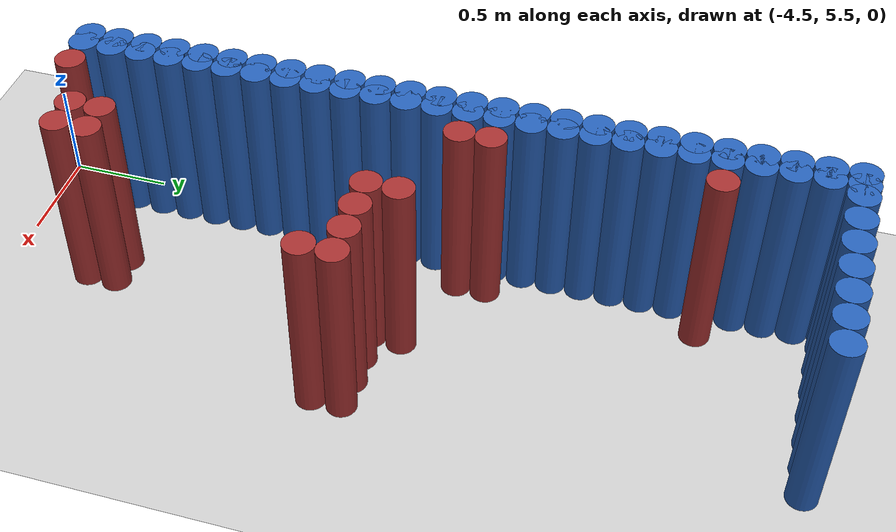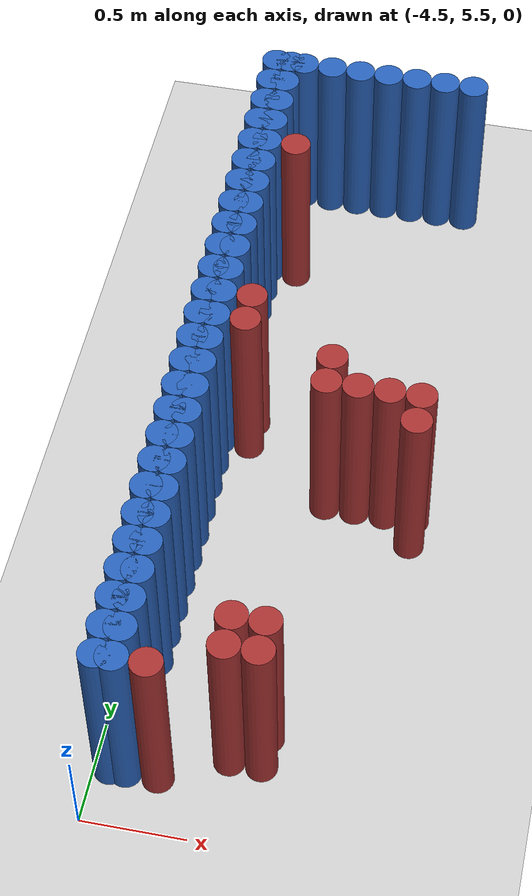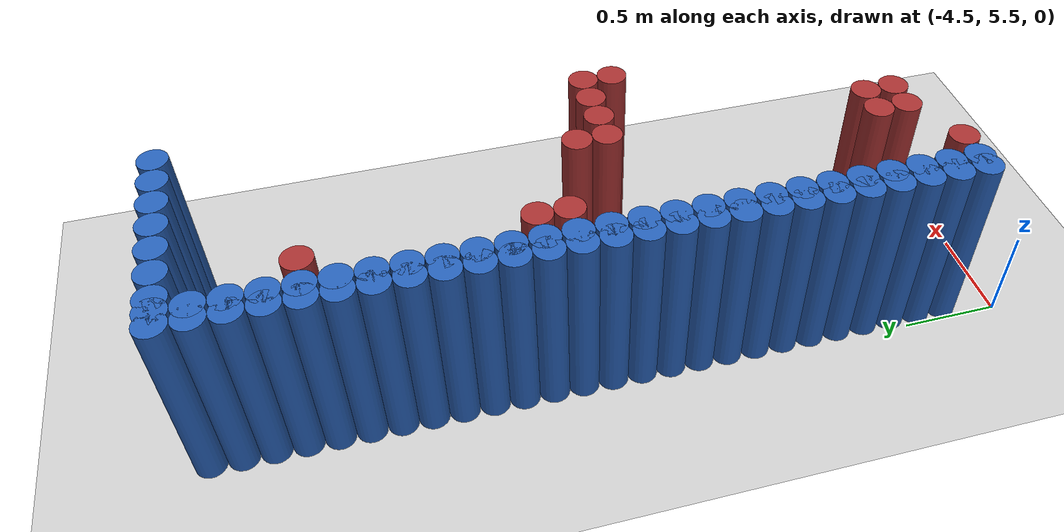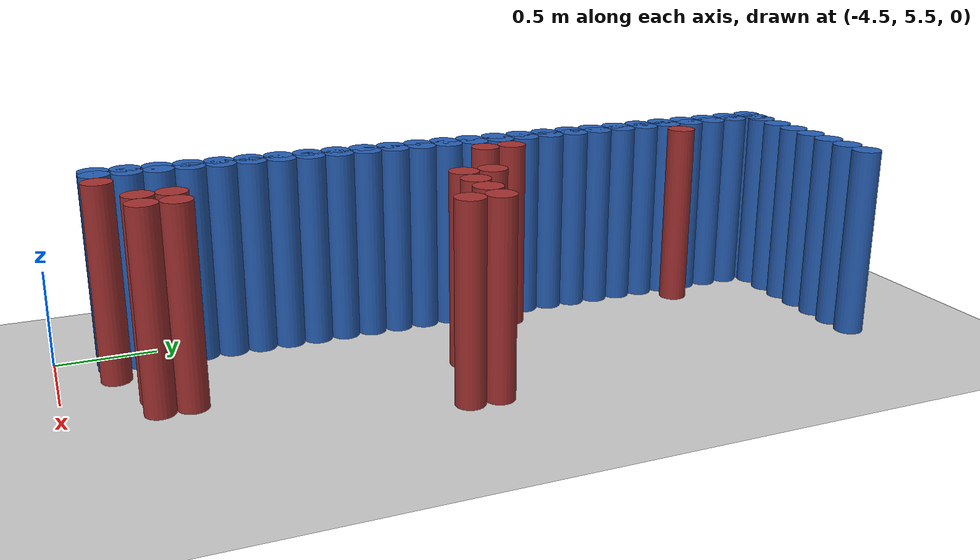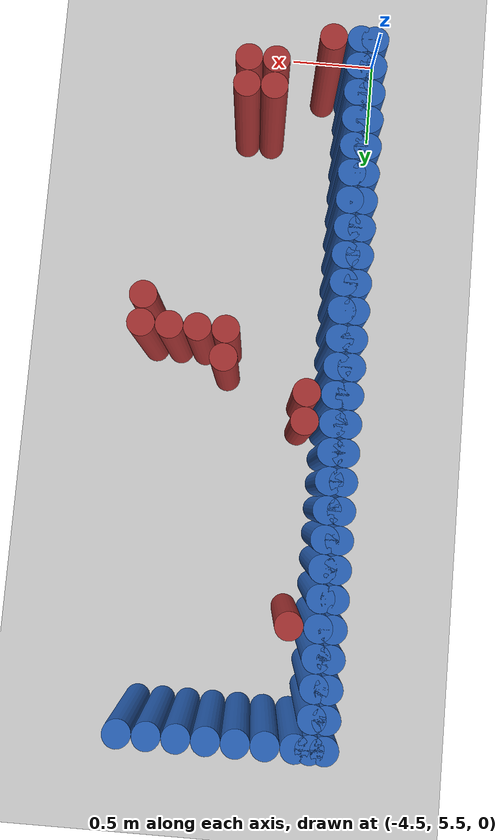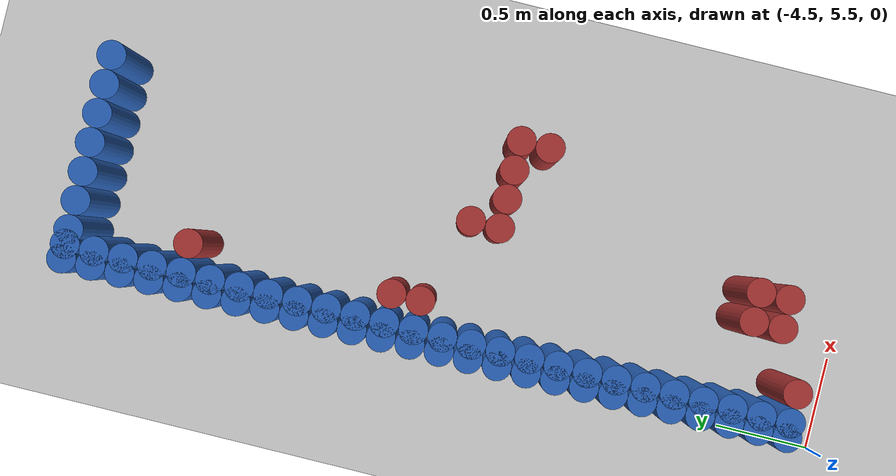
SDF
<sdf version="1.6">
 <world name="barn_world">
  <model name="ground_plane">
   <static>1</static>
   <link name="link">
    <collision name="collision">
     <geometry><plane><normal>0 0 1</normal><size>100 100</size></plane></geometry>
    </collision>
    <visual name="visual">
     <geometry><plane><normal>0 0 1</normal><size>100 100</size></plane></geometry>
     <material>
      <script><uri>file://media/materials/scripts/gazebo.material</uri><name>Gazebo/Grey</name></script>
     </material>
    </visual>
   </link>
  </model>
  <model name="unit_cylinder_130">
   <static>1</static>
   <pose>-4.3500 5.7750 0.5 0 0 0</pose>
   <link name="link">
    <collision name="collision">
     <geometry><cylinder><radius>0.075</radius><length>1</length></cylinder></geometry>
    </collision>
    <visual name="visual">
     <geometry><cylinder><radius>0.075</radius><length>1</length></cylinder></geometry>
     <material><ambient>0.152 0.379 0.72 1</ambient><diffuse>0.152 0.379 0.72 1</diffuse></material>
    </visual>
   </link>
  </model>
  <model name="unit_cylinder_131">
   <static>1</static>
   <pose>-4.3500 5.9250 0.5 0 0 0</pose>
   <link name="link">
    <collision name="collision">
     <geometry><cylinder><radius>0.075</radius><length>1</length></cylinder></geometry>
    </collision>
    <visual name="visual">
     <geometry><cylinder><radius>0.075</radius><length>1</length></cylinder></geometry>
     <material><ambient>0.152 0.379 0.72 1</ambient><diffuse>0.152 0.379 0.72 1</diffuse></material>
    </visual>
   </link>
  </model>
  <model name="unit_cylinder_132">
   <static>1</static>
   <pose>-4.3500 6.0750 0.5 0 0 0</pose>
   <link name="link">
    <collision name="collision">
     <geometry><cylinder><radius>0.075</radius><length>1</length></cylinder></geometry>
    </collision>
    <visual name="visual">
     <geometry><cylinder><radius>0.075</radius><length>1</length></cylinder></geometry>
     <material><ambient>0.152 0.379 0.72 1</ambient><diffuse>0.152 0.379 0.72 1</diffuse></material>
    </visual>
   </link>
  </model>
  <model name="unit_cylinder_133">
   <static>1</static>
   <pose>-4.3500 6.2250 0.5 0 0 0</pose>
   <link name="link">
    <collision name="collision">
     <geometry><cylinder><radius>0.075</radius><length>1</length></cylinder></geometry>
    </collision>
    <visual name="visual">
     <geometry><cylinder><radius>0.075</radius><length>1</length></cylinder></geometry>
     <material><ambient>0.152 0.379 0.72 1</ambient><diffuse>0.152 0.379 0.72 1</diffuse></material>
    </visual>
   </link>
  </model>
  <model name="unit_cylinder_134">
   <static>1</static>
   <pose>-4.3500 6.3750 0.5 0 0 0</pose>
   <link name="link">
    <collision name="collision">
     <geometry><cylinder><radius>0.075</radius><length>1</length></cylinder></geometry>
    </collision>
    <visual name="visual">
     <geometry><cylinder><radius>0.075</radius><length>1</length></cylinder></geometry>
     <material><ambient>0.152 0.379 0.72 1</ambient><diffuse>0.152 0.379 0.72 1</diffuse></material>
    </visual>
   </link>
  </model>
  <model name="unit_cylinder_135">
   <static>1</static>
   <pose>-4.3500 6.5250 0.5 0 0 0</pose>
   <link name="link">
    <collision name="collision">
     <geometry><cylinder><radius>0.075</radius><length>1</length></cylinder></geometry>
    </collision>
    <visual name="visual">
     <geometry><cylinder><radius>0.075</radius><length>1</length></cylinder></geometry>
     <material><ambient>0.152 0.379 0.72 1</ambient><diffuse>0.152 0.379 0.72 1</diffuse></material>
    </visual>
   </link>
  </model>
  <model name="unit_cylinder_136">
   <static>1</static>
   <pose>-4.3500 6.6750 0.5 0 0 0</pose>
   <link name="link">
    <collision name="collision">
     <geometry><cylinder><radius>0.075</radius><length>1</length></cylinder></geometry>
    </collision>
    <visual name="visual">
     <geometry><cylinder><radius>0.075</radius><length>1</length></cylinder></geometry>
     <material><ambient>0.152 0.379 0.72 1</ambient><diffuse>0.152 0.379 0.72 1</diffuse></material>
    </visual>
   </link>
  </model>
  <model name="unit_cylinder_137">
   <static>1</static>
   <pose>-4.3500 6.8250 0.5 0 0 0</pose>
   <link name="link">
    <collision name="collision">
     <geometry><cylinder><radius>0.075</radius><length>1</length></cylinder></geometry>
    </collision>
    <visual name="visual">
     <geometry><cylinder><radius>0.075</radius><length>1</length></cylinder></geometry>
     <material><ambient>0.152 0.379 0.72 1</ambient><diffuse>0.152 0.379 0.72 1</diffuse></material>
    </visual>
   </link>
  </model>
  <model name="unit_cylinder_138">
   <static>1</static>
   <pose>-4.3500 6.9750 0.5 0 0 0</pose>
   <link name="link">
    <collision name="collision">
     <geometry><cylinder><radius>0.075</radius><length>1</length></cylinder></geometry>
    </collision>
    <visual name="visual">
     <geometry><cylinder><radius>0.075</radius><length>1</length></cylinder></geometry>
     <material><ambient>0.152 0.379 0.72 1</ambient><diffuse>0.152 0.379 0.72 1</diffuse></material>
    </visual>
   </link>
  </model>
  <model name="unit_cylinder_139">
   <static>1</static>
   <pose>-4.3500 7.1250 0.5 0 0 0</pose>
   <link name="link">
    <collision name="collision">
     <geometry><cylinder><radius>0.075</radius><length>1</length></cylinder></geometry>
    </collision>
    <visual name="visual">
     <geometry><cylinder><radius>0.075</radius><length>1</length></cylinder></geometry>
     <material><ambient>0.152 0.379 0.72 1</ambient><diffuse>0.152 0.379 0.72 1</diffuse></material>
    </visual>
   </link>
  </model>
  <model name="unit_cylinder_140">
   <static>1</static>
   <pose>-4.3500 7.2750 0.5 0 0 0</pose>
   <link name="link">
    <collision name="collision">
     <geometry><cylinder><radius>0.075</radius><length>1</length></cylinder></geometry>
    </collision>
    <visual name="visual">
     <geometry><cylinder><radius>0.075</radius><length>1</length></cylinder></geometry>
     <material><ambient>0.152 0.379 0.72 1</ambient><diffuse>0.152 0.379 0.72 1</diffuse></material>
    </visual>
   </link>
  </model>
  <model name="unit_cylinder_141">
   <static>1</static>
   <pose>-4.3500 7.4250 0.5 0 0 0</pose>
   <link name="link">
    <collision name="collision">
     <geometry><cylinder><radius>0.075</radius><length>1</length></cylinder></geometry>
    </collision>
    <visual name="visual">
     <geometry><cylinder><radius>0.075</radius><length>1</length></cylinder></geometry>
     <material><ambient>0.152 0.379 0.72 1</ambient><diffuse>0.152 0.379 0.72 1</diffuse></material>
    </visual>
   </link>
  </model>
  <model name="unit_cylinder_142">
   <static>1</static>
   <pose>-4.3500 7.5750 0.5 0 0 0</pose>
   <link name="link">
    <collision name="collision">
     <geometry><cylinder><radius>0.075</radius><length>1</length></cylinder></geometry>
    </collision>
    <visual name="visual">
     <geometry><cylinder><radius>0.075</radius><length>1</length></cylinder></geometry>
     <material><ambient>0.152 0.379 0.72 1</ambient><diffuse>0.152 0.379 0.72 1</diffuse></material>
    </visual>
   </link>
  </model>
  <model name="unit_cylinder_143">
   <static>1</static>
   <pose>-4.3500 7.7250 0.5 0 0 0</pose>
   <link name="link">
    <collision name="collision">
     <geometry><cylinder><radius>0.075</radius><length>1</length></cylinder></geometry>
    </collision>
    <visual name="visual">
     <geometry><cylinder><radius>0.075</radius><length>1</length></cylinder></geometry>
     <material><ambient>0.152 0.379 0.72 1</ambient><diffuse>0.152 0.379 0.72 1</diffuse></material>
    </visual>
   </link>
  </model>
  <model name="unit_cylinder_144">
   <static>1</static>
   <pose>-4.3500 7.8750 0.5 0 0 0</pose>
   <link name="link">
    <collision name="collision">
     <geometry><cylinder><radius>0.075</radius><length>1</length></cylinder></geometry>
    </collision>
    <visual name="visual">
     <geometry><cylinder><radius>0.075</radius><length>1</length></cylinder></geometry>
     <material><ambient>0.152 0.379 0.72 1</ambient><diffuse>0.152 0.379 0.72 1</diffuse></material>
    </visual>
   </link>
  </model>
  <model name="unit_cylinder_145">
   <static>1</static>
   <pose>-4.3500 8.0250 0.5 0 0 0</pose>
   <link name="link">
    <collision name="collision">
     <geometry><cylinder><radius>0.075</radius><length>1</length></cylinder></geometry>
    </collision>
    <visual name="visual">
     <geometry><cylinder><radius>0.075</radius><length>1</length></cylinder></geometry>
     <material><ambient>0.152 0.379 0.72 1</ambient><diffuse>0.152 0.379 0.72 1</diffuse></material>
    </visual>
   </link>
  </model>
  <model name="unit_cylinder_146">
   <static>1</static>
   <pose>-4.3500 8.1750 0.5 0 0 0</pose>
   <link name="link">
    <collision name="collision">
     <geometry><cylinder><radius>0.075</radius><length>1</length></cylinder></geometry>
    </collision>
    <visual name="visual">
     <geometry><cylinder><radius>0.075</radius><length>1</length></cylinder></geometry>
     <material><ambient>0.152 0.379 0.72 1</ambient><diffuse>0.152 0.379 0.72 1</diffuse></material>
    </visual>
   </link>
  </model>
  <model name="unit_cylinder_147">
   <static>1</static>
   <pose>-4.3500 8.3250 0.5 0 0 0</pose>
   <link name="link">
    <collision name="collision">
     <geometry><cylinder><radius>0.075</radius><length>1</length></cylinder></geometry>
    </collision>
    <visual name="visual">
     <geometry><cylinder><radius>0.075</radius><length>1</length></cylinder></geometry>
     <material><ambient>0.152 0.379 0.72 1</ambient><diffuse>0.152 0.379 0.72 1</diffuse></material>
    </visual>
   </link>
  </model>
  <model name="unit_cylinder_148">
   <static>1</static>
   <pose>-4.3500 8.4750 0.5 0 0 0</pose>
   <link name="link">
    <collision name="collision">
     <geometry><cylinder><radius>0.075</radius><length>1</length></cylinder></geometry>
    </collision>
    <visual name="visual">
     <geometry><cylinder><radius>0.075</radius><length>1</length></cylinder></geometry>
     <material><ambient>0.152 0.379 0.72 1</ambient><diffuse>0.152 0.379 0.72 1</diffuse></material>
    </visual>
   </link>
  </model>
  <model name="unit_cylinder_149">
   <static>1</static>
   <pose>-4.3500 8.6250 0.5 0 0 0</pose>
   <link name="link">
    <collision name="collision">
     <geometry><cylinder><radius>0.075</radius><length>1</length></cylinder></geometry>
    </collision>
    <visual name="visual">
     <geometry><cylinder><radius>0.075</radius><length>1</length></cylinder></geometry>
     <material><ambient>0.152 0.379 0.72 1</ambient><diffuse>0.152 0.379 0.72 1</diffuse></material>
    </visual>
   </link>
  </model>
  <model name="unit_cylinder_150">
   <static>1</static>
   <pose>-4.3500 8.7750 0.5 0 0 0</pose>
   <link name="link">
    <collision name="collision">
     <geometry><cylinder><radius>0.075</radius><length>1</length></cylinder></geometry>
    </collision>
    <visual name="visual">
     <geometry><cylinder><radius>0.075</radius><length>1</length></cylinder></geometry>
     <material><ambient>0.152 0.379 0.72 1</ambient><diffuse>0.152 0.379 0.72 1</diffuse></material>
    </visual>
   </link>
  </model>
  <model name="unit_cylinder_151">
   <static>1</static>
   <pose>-4.3500 8.9250 0.5 0 0 0</pose>
   <link name="link">
    <collision name="collision">
     <geometry><cylinder><radius>0.075</radius><length>1</length></cylinder></geometry>
    </collision>
    <visual name="visual">
     <geometry><cylinder><radius>0.075</radius><length>1</length></cylinder></geometry>
     <material><ambient>0.152 0.379 0.72 1</ambient><diffuse>0.152 0.379 0.72 1</diffuse></material>
    </visual>
   </link>
  </model>
  <model name="unit_cylinder_152">
   <static>1</static>
   <pose>-4.3500 9.0750 0.5 0 0 0</pose>
   <link name="link">
    <collision name="collision">
     <geometry><cylinder><radius>0.075</radius><length>1</length></cylinder></geometry>
    </collision>
    <visual name="visual">
     <geometry><cylinder><radius>0.075</radius><length>1</length></cylinder></geometry>
     <material><ambient>0.152 0.379 0.72 1</ambient><diffuse>0.152 0.379 0.72 1</diffuse></material>
    </visual>
   </link>
  </model>
  <model name="unit_cylinder_153">
   <static>1</static>
   <pose>-4.3500 9.2250 0.5 0 0 0</pose>
   <link name="link">
    <collision name="collision">
     <geometry><cylinder><radius>0.075</radius><length>1</length></cylinder></geometry>
    </collision>
    <visual name="visual">
     <geometry><cylinder><radius>0.075</radius><length>1</length></cylinder></geometry>
     <material><ambient>0.152 0.379 0.72 1</ambient><diffuse>0.152 0.379 0.72 1</diffuse></material>
    </visual>
   </link>
  </model>
  <model name="unit_cylinder_154">
   <static>1</static>
   <pose>-4.3500 9.3750 0.5 0 0 0</pose>
   <link name="link">
    <collision name="collision">
     <geometry><cylinder><radius>0.075</radius><length>1</length></cylinder></geometry>
    </collision>
    <visual name="visual">
     <geometry><cylinder><radius>0.075</radius><length>1</length></cylinder></geometry>
     <material><ambient>0.152 0.379 0.72 1</ambient><diffuse>0.152 0.379 0.72 1</diffuse></material>
    </visual>
   </link>
  </model>
  <model name="unit_cylinder_155">
   <static>1</static>
   <pose>-4.3500 9.5250 0.5 0 0 0</pose>
   <link name="link">
    <collision name="collision">
     <geometry><cylinder><radius>0.075</radius><length>1</length></cylinder></geometry>
    </collision>
    <visual name="visual">
     <geometry><cylinder><radius>0.075</radius><length>1</length></cylinder></geometry>
     <material><ambient>0.152 0.379 0.72 1</ambient><diffuse>0.152 0.379 0.72 1</diffuse></material>
    </visual>
   </link>
  </model>
  <model name="unit_cylinder_159">
   <static>1</static>
   <pose>-4.2000 5.7750 0.5 0 0 0</pose>
   <link name="link">
    <collision name="collision">
     <geometry><cylinder><radius>0.075</radius><length>1</length></cylinder></geometry>
    </collision>
    <visual name="visual">
     <geometry><cylinder><radius>0.075</radius><length>1</length></cylinder></geometry>
     <material><ambient>0.648 0.192 0.192 1</ambient><diffuse>0.648 0.192 0.192 1</diffuse></material>
    </visual>
   </link>
  </model>
  <model name="unit_cylinder_160">
   <static>1</static>
   <pose>-4.2000 7.7250 0.5 0 0 0</pose>
   <link name="link">
    <collision name="collision">
     <geometry><cylinder><radius>0.075</radius><length>1</length></cylinder></geometry>
    </collision>
    <visual name="visual">
     <geometry><cylinder><radius>0.075</radius><length>1</length></cylinder></geometry>
     <material><ambient>0.648 0.192 0.192 1</ambient><diffuse>0.648 0.192 0.192 1</diffuse></material>
    </visual>
   </link>
  </model>
  <model name="unit_cylinder_161">
   <static>1</static>
   <pose>-4.2000 7.8750 0.5 0 0 0</pose>
   <link name="link">
    <collision name="collision">
     <geometry><cylinder><radius>0.075</radius><length>1</length></cylinder></geometry>
    </collision>
    <visual name="visual">
     <geometry><cylinder><radius>0.075</radius><length>1</length></cylinder></geometry>
     <material><ambient>0.648 0.192 0.192 1</ambient><diffuse>0.648 0.192 0.192 1</diffuse></material>
    </visual>
   </link>
  </model>
  <model name="unit_cylinder_162">
   <static>1</static>
   <pose>-4.2000 8.9250 0.5 0 0 0</pose>
   <link name="link">
    <collision name="collision">
     <geometry><cylinder><radius>0.075</radius><length>1</length></cylinder></geometry>
    </collision>
    <visual name="visual">
     <geometry><cylinder><radius>0.075</radius><length>1</length></cylinder></geometry>
     <material><ambient>0.648 0.192 0.192 1</ambient><diffuse>0.648 0.192 0.192 1</diffuse></material>
    </visual>
   </link>
  </model>
  <model name="unit_cylinder_163">
   <static>1</static>
   <pose>-3.9000 5.9250 0.5 0 0 0</pose>
   <link name="link">
    <collision name="collision">
     <geometry><cylinder><radius>0.075</radius><length>1</length></cylinder></geometry>
    </collision>
    <visual name="visual">
     <geometry><cylinder><radius>0.075</radius><length>1</length></cylinder></geometry>
     <material><ambient>0.648 0.192 0.192 1</ambient><diffuse>0.648 0.192 0.192 1</diffuse></material>
    </visual>
   </link>
  </model>
  <model name="unit_cylinder_164">
   <static>1</static>
   <pose>-3.9000 6.0750 0.5 0 0 0</pose>
   <link name="link">
    <collision name="collision">
     <geometry><cylinder><radius>0.075</radius><length>1</length></cylinder></geometry>
    </collision>
    <visual name="visual">
     <geometry><cylinder><radius>0.075</radius><length>1</length></cylinder></geometry>
     <material><ambient>0.648 0.192 0.192 1</ambient><diffuse>0.648 0.192 0.192 1</diffuse></material>
    </visual>
   </link>
  </model>
  <model name="unit_cylinder_165">
   <static>1</static>
   <pose>-3.7500 5.9250 0.5 0 0 0</pose>
   <link name="link">
    <collision name="collision">
     <geometry><cylinder><radius>0.075</radius><length>1</length></cylinder></geometry>
    </collision>
    <visual name="visual">
     <geometry><cylinder><radius>0.075</radius><length>1</length></cylinder></geometry>
     <material><ambient>0.648 0.192 0.192 1</ambient><diffuse>0.648 0.192 0.192 1</diffuse></material>
    </visual>
   </link>
  </model>
  <model name="unit_cylinder_166">
   <static>1</static>
   <pose>-3.7500 6.0750 0.5 0 0 0</pose>
   <link name="link">
    <collision name="collision">
     <geometry><cylinder><radius>0.075</radius><length>1</length></cylinder></geometry>
    </collision>
    <visual name="visual">
     <geometry><cylinder><radius>0.075</radius><length>1</length></cylinder></geometry>
     <material><ambient>0.648 0.192 0.192 1</ambient><diffuse>0.648 0.192 0.192 1</diffuse></material>
    </visual>
   </link>
  </model>
  <model name="unit_cylinder_167">
   <static>1</static>
   <pose>-3.7500 7.4250 0.5 0 0 0</pose>
   <link name="link">
    <collision name="collision">
     <geometry><cylinder><radius>0.075</radius><length>1</length></cylinder></geometry>
    </collision>
    <visual name="visual">
     <geometry><cylinder><radius>0.075</radius><length>1</length></cylinder></geometry>
     <material><ambient>0.648 0.192 0.192 1</ambient><diffuse>0.648 0.192 0.192 1</diffuse></material>
    </visual>
   </link>
  </model>
  <model name="unit_cylinder_168">
   <static>1</static>
   <pose>-3.7500 7.5750 0.5 0 0 0</pose>
   <link name="link">
    <collision name="collision">
     <geometry><cylinder><radius>0.075</radius><length>1</length></cylinder></geometry>
    </collision>
    <visual name="visual">
     <geometry><cylinder><radius>0.075</radius><length>1</length></cylinder></geometry>
     <material><ambient>0.648 0.192 0.192 1</ambient><diffuse>0.648 0.192 0.192 1</diffuse></material>
    </visual>
   </link>
  </model>
  <model name="unit_cylinder_169">
   <static>1</static>
   <pose>-3.6000 7.4250 0.5 0 0 0</pose>
   <link name="link">
    <collision name="collision">
     <geometry><cylinder><radius>0.075</radius><length>1</length></cylinder></geometry>
    </collision>
    <visual name="visual">
     <geometry><cylinder><radius>0.075</radius><length>1</length></cylinder></geometry>
     <material><ambient>0.648 0.192 0.192 1</ambient><diffuse>0.648 0.192 0.192 1</diffuse></material>
    </visual>
   </link>
  </model>
  <model name="unit_cylinder_170">
   <static>1</static>
   <pose>-3.4500 7.4250 0.5 0 0 0</pose>
   <link name="link">
    <collision name="collision">
     <geometry><cylinder><radius>0.075</radius><length>1</length></cylinder></geometry>
    </collision>
    <visual name="visual">
     <geometry><cylinder><radius>0.075</radius><length>1</length></cylinder></geometry>
     <material><ambient>0.648 0.192 0.192 1</ambient><diffuse>0.648 0.192 0.192 1</diffuse></material>
    </visual>
   </link>
  </model>
  <model name="unit_cylinder_171">
   <static>1</static>
   <pose>-3.3000 7.2750 0.5 0 0 0</pose>
   <link name="link">
    <collision name="collision">
     <geometry><cylinder><radius>0.075</radius><length>1</length></cylinder></geometry>
    </collision>
    <visual name="visual">
     <geometry><cylinder><radius>0.075</radius><length>1</length></cylinder></geometry>
     <material><ambient>0.648 0.192 0.192 1</ambient><diffuse>0.648 0.192 0.192 1</diffuse></material>
    </visual>
   </link>
  </model>
  <model name="unit_cylinder_172">
   <static>1</static>
   <pose>-3.3000 7.4250 0.5 0 0 0</pose>
   <link name="link">
    <collision name="collision">
     <geometry><cylinder><radius>0.075</radius><length>1</length></cylinder></geometry>
    </collision>
    <visual name="visual">
     <geometry><cylinder><radius>0.075</radius><length>1</length></cylinder></geometry>
     <material><ambient>0.648 0.192 0.192 1</ambient><diffuse>0.648 0.192 0.192 1</diffuse></material>
    </visual>
   </link>
  </model>
  <model name="unit_cylinder_227">
   <static>1</static>
   <pose>-3.3750 9.5250 0.5 0 0 0</pose>
   <link name="link">
    <collision name="collision">
     <geometry><cylinder><radius>0.075</radius><length>1</length></cylinder></geometry>
    </collision>
    <visual name="visual">
     <geometry><cylinder><radius>0.075</radius><length>1</length></cylinder></geometry>
     <material><ambient>0.152 0.379 0.72 1</ambient><diffuse>0.152 0.379 0.72 1</diffuse></material>
    </visual>
   </link>
  </model>
  <model name="unit_cylinder_228">
   <static>1</static>
   <pose>-3.5250 9.5250 0.5 0 0 0</pose>
   <link name="link">
    <collision name="collision">
     <geometry><cylinder><radius>0.075</radius><length>1</length></cylinder></geometry>
    </collision>
    <visual name="visual">
     <geometry><cylinder><radius>0.075</radius><length>1</length></cylinder></geometry>
     <material><ambient>0.152 0.379 0.72 1</ambient><diffuse>0.152 0.379 0.72 1</diffuse></material>
    </visual>
   </link>
  </model>
  <model name="unit_cylinder_229">
   <static>1</static>
   <pose>-3.6750 9.5250 0.5 0 0 0</pose>
   <link name="link">
    <collision name="collision">
     <geometry><cylinder><radius>0.075</radius><length>1</length></cylinder></geometry>
    </collision>
    <visual name="visual">
     <geometry><cylinder><radius>0.075</radius><length>1</length></cylinder></geometry>
     <material><ambient>0.152 0.379 0.72 1</ambient><diffuse>0.152 0.379 0.72 1</diffuse></material>
    </visual>
   </link>
  </model>
  <model name="unit_cylinder_230">
   <static>1</static>
   <pose>-3.8250 9.5250 0.5 0 0 0</pose>
   <link name="link">
    <collision name="collision">
     <geometry><cylinder><radius>0.075</radius><length>1</length></cylinder></geometry>
    </collision>
    <visual name="visual">
     <geometry><cylinder><radius>0.075</radius><length>1</length></cylinder></geometry>
     <material><ambient>0.152 0.379 0.72 1</ambient><diffuse>0.152 0.379 0.72 1</diffuse></material>
    </visual>
   </link>
  </model>
  <model name="unit_cylinder_231">
   <static>1</static>
   <pose>-3.9750 9.5250 0.5 0 0 0</pose>
   <link name="link">
    <collision name="collision">
     <geometry><cylinder><radius>0.075</radius><length>1</length></cylinder></geometry>
    </collision>
    <visual name="visual">
     <geometry><cylinder><radius>0.075</radius><length>1</length></cylinder></geometry>
     <material><ambient>0.152 0.379 0.72 1</ambient><diffuse>0.152 0.379 0.72 1</diffuse></material>
    </visual>
   </link>
  </model>
  <model name="unit_cylinder_232">
   <static>1</static>
   <pose>-4.1250 9.5250 0.5 0 0 0</pose>
   <link name="link">
    <collision name="collision">
     <geometry><cylinder><radius>0.075</radius><length>1</length></cylinder></geometry>
    </collision>
    <visual name="visual">
     <geometry><cylinder><radius>0.075</radius><length>1</length></cylinder></geometry>
     <material><ambient>0.152 0.379 0.72 1</ambient><diffuse>0.152 0.379 0.72 1</diffuse></material>
    </visual>
   </link>
  </model>
  <model name="unit_cylinder_233">
   <static>1</static>
   <pose>-4.2750 9.5250 0.5 0 0 0</pose>
   <link name="link">
    <collision name="collision">
     <geometry><cylinder><radius>0.075</radius><length>1</length></cylinder></geometry>
    </collision>
    <visual name="visual">
     <geometry><cylinder><radius>0.075</radius><length>1</length></cylinder></geometry>
     <material><ambient>0.152 0.379 0.72 1</ambient><diffuse>0.152 0.379 0.72 1</diffuse></material>
    </visual>
   </link>
  </model>
  <model name="unit_cylinder_234">
   <static>1</static>
   <pose>-4.4250 9.5250 0.5 0 0 0</pose>
   <link name="link">
    <collision name="collision">
     <geometry><cylinder><radius>0.075</radius><length>1</length></cylinder></geometry>
    </collision>
    <visual name="visual">
     <geometry><cylinder><radius>0.075</radius><length>1</length></cylinder></geometry>
     <material><ambient>0.152 0.379 0.72 1</ambient><diffuse>0.152 0.379 0.72 1</diffuse></material>
    </visual>
   </link>
  </model>
  <model name="unit_cylinder_244">
   <static>1</static>
   <pose>-4.4250 5.7750 0.5 0 0 0</pose>
   <link name="link">
    <collision name="collision">
     <geometry><cylinder><radius>0.075</radius><length>1</length></cylinder></geometry>
    </collision>
    <visual name="visual">
     <geometry><cylinder><radius>0.075</radius><length>1</length></cylinder></geometry>
     <material><ambient>0.152 0.379 0.72 1</ambient><diffuse>0.152 0.379 0.72 1</diffuse></material>
    </visual>
   </link>
  </model>
  <model name="unit_cylinder_246">
   <static>1</static>
   <pose>-4.4250 5.9250 0.5 0 0 0</pose>
   <link name="link">
    <collision name="collision">
     <geometry><cylinder><radius>0.075</radius><length>1</length></cylinder></geometry>
    </collision>
    <visual name="visual">
     <geometry><cylinder><radius>0.075</radius><length>1</length></cylinder></geometry>
     <material><ambient>0.152 0.379 0.72 1</ambient><diffuse>0.152 0.379 0.72 1</diffuse></material>
    </visual>
   </link>
  </model>
  <model name="unit_cylinder_248">
   <static>1</static>
   <pose>-4.4250 6.0750 0.5 0 0 0</pose>
   <link name="link">
    <collision name="collision">
     <geometry><cylinder><radius>0.075</radius><length>1</length></cylinder></geometry>
    </collision>
    <visual name="visual">
     <geometry><cylinder><radius>0.075</radius><length>1</length></cylinder></geometry>
     <material><ambient>0.152 0.379 0.72 1</ambient><diffuse>0.152 0.379 0.72 1</diffuse></material>
    </visual>
   </link>
  </model>
  <model name="unit_cylinder_250">
   <static>1</static>
   <pose>-4.4250 6.2250 0.5 0 0 0</pose>
   <link name="link">
    <collision name="collision">
     <geometry><cylinder><radius>0.075</radius><length>1</length></cylinder></geometry>
    </collision>
    <visual name="visual">
     <geometry><cylinder><radius>0.075</radius><length>1</length></cylinder></geometry>
     <material><ambient>0.152 0.379 0.72 1</ambient><diffuse>0.152 0.379 0.72 1</diffuse></material>
    </visual>
   </link>
  </model>
  <model name="unit_cylinder_252">
   <static>1</static>
   <pose>-4.4250 6.3750 0.5 0 0 0</pose>
   <link name="link">
    <collision name="collision">
     <geometry><cylinder><radius>0.075</radius><length>1</length></cylinder></geometry>
    </collision>
    <visual name="visual">
     <geometry><cylinder><radius>0.075</radius><length>1</length></cylinder></geometry>
     <material><ambient>0.152 0.379 0.72 1</ambient><diffuse>0.152 0.379 0.72 1</diffuse></material>
    </visual>
   </link>
  </model>
  <model name="unit_cylinder_254">
   <static>1</static>
   <pose>-4.4250 6.5250 0.5 0 0 0</pose>
   <link name="link">
    <collision name="collision">
     <geometry><cylinder><radius>0.075</radius><length>1</length></cylinder></geometry>
    </collision>
    <visual name="visual">
     <geometry><cylinder><radius>0.075</radius><length>1</length></cylinder></geometry>
     <material><ambient>0.152 0.379 0.72 1</ambient><diffuse>0.152 0.379 0.72 1</diffuse></material>
    </visual>
   </link>
  </model>
  <model name="unit_cylinder_256">
   <static>1</static>
   <pose>-4.4250 6.6750 0.5 0 0 0</pose>
   <link name="link">
    <collision name="collision">
     <geometry><cylinder><radius>0.075</radius><length>1</length></cylinder></geometry>
    </collision>
    <visual name="visual">
     <geometry><cylinder><radius>0.075</radius><length>1</length></cylinder></geometry>
     <material><ambient>0.152 0.379 0.72 1</ambient><diffuse>0.152 0.379 0.72 1</diffuse></material>
    </visual>
   </link>
  </model>
  <model name="unit_cylinder_258">
   <static>1</static>
   <pose>-4.4250 6.8250 0.5 0 0 0</pose>
   <link name="link">
    <collision name="collision">
     <geometry><cylinder><radius>0.075</radius><length>1</length></cylinder></geometry>
    </collision>
    <visual name="visual">
     <geometry><cylinder><radius>0.075</radius><length>1</length></cylinder></geometry>
     <material><ambient>0.152 0.379 0.72 1</ambient><diffuse>0.152 0.379 0.72 1</diffuse></material>
    </visual>
   </link>
  </model>
  <model name="unit_cylinder_260">
   <static>1</static>
   <pose>-4.4250 6.9750 0.5 0 0 0</pose>
   <link name="link">
    <collision name="collision">
     <geometry><cylinder><radius>0.075</radius><length>1</length></cylinder></geometry>
    </collision>
    <visual name="visual">
     <geometry><cylinder><radius>0.075</radius><length>1</length></cylinder></geometry>
     <material><ambient>0.152 0.379 0.72 1</ambient><diffuse>0.152 0.379 0.72 1</diffuse></material>
    </visual>
   </link>
  </model>
  <model name="unit_cylinder_262">
   <static>1</static>
   <pose>-4.4250 7.1250 0.5 0 0 0</pose>
   <link name="link">
    <collision name="collision">
     <geometry><cylinder><radius>0.075</radius><length>1</length></cylinder></geometry>
    </collision>
    <visual name="visual">
     <geometry><cylinder><radius>0.075</radius><length>1</length></cylinder></geometry>
     <material><ambient>0.152 0.379 0.72 1</ambient><diffuse>0.152 0.379 0.72 1</diffuse></material>
    </visual>
   </link>
  </model>
  <model name="unit_cylinder_264">
   <static>1</static>
   <pose>-4.4250 7.2750 0.5 0 0 0</pose>
   <link name="link">
    <collision name="collision">
     <geometry><cylinder><radius>0.075</radius><length>1</length></cylinder></geometry>
    </collision>
    <visual name="visual">
     <geometry><cylinder><radius>0.075</radius><length>1</length></cylinder></geometry>
     <material><ambient>0.152 0.379 0.72 1</ambient><diffuse>0.152 0.379 0.72 1</diffuse></material>
    </visual>
   </link>
  </model>
  <model name="unit_cylinder_266">
   <static>1</static>
   <pose>-4.4250 7.4250 0.5 0 0 0</pose>
   <link name="link">
    <collision name="collision">
     <geometry><cylinder><radius>0.075</radius><length>1</length></cylinder></geometry>
    </collision>
    <visual name="visual">
     <geometry><cylinder><radius>0.075</radius><length>1</length></cylinder></geometry>
     <material><ambient>0.152 0.379 0.72 1</ambient><diffuse>0.152 0.379 0.72 1</diffuse></material>
    </visual>
   </link>
  </model>
  <model name="unit_cylinder_268">
   <static>1</static>
   <pose>-4.4250 7.5750 0.5 0 0 0</pose>
   <link name="link">
    <collision name="collision">
     <geometry><cylinder><radius>0.075</radius><length>1</length></cylinder></geometry>
    </collision>
    <visual name="visual">
     <geometry><cylinder><radius>0.075</radius><length>1</length></cylinder></geometry>
     <material><ambient>0.152 0.379 0.72 1</ambient><diffuse>0.152 0.379 0.72 1</diffuse></material>
    </visual>
   </link>
  </model>
  <model name="unit_cylinder_270">
   <static>1</static>
   <pose>-4.4250 7.7250 0.5 0 0 0</pose>
   <link name="link">
    <collision name="collision">
     <geometry><cylinder><radius>0.075</radius><length>1</length></cylinder></geometry>
    </collision>
    <visual name="visual">
     <geometry><cylinder><radius>0.075</radius><length>1</length></cylinder></geometry>
     <material><ambient>0.152 0.379 0.72 1</ambient><diffuse>0.152 0.379 0.72 1</diffuse></material>
    </visual>
   </link>
  </model>
  <model name="unit_cylinder_272">
   <static>1</static>
   <pose>-4.4250 7.8750 0.5 0 0 0</pose>
   <link name="link">
    <collision name="collision">
     <geometry><cylinder><radius>0.075</radius><length>1</length></cylinder></geometry>
    </collision>
    <visual name="visual">
     <geometry><cylinder><radius>0.075</radius><length>1</length></cylinder></geometry>
     <material><ambient>0.152 0.379 0.72 1</ambient><diffuse>0.152 0.379 0.72 1</diffuse></material>
    </visual>
   </link>
  </model>
  <model name="unit_cylinder_274">
   <static>1</static>
   <pose>-4.4250 8.0250 0.5 0 0 0</pose>
   <link name="link">
    <collision name="collision">
     <geometry><cylinder><radius>0.075</radius><length>1</length></cylinder></geometry>
    </collision>
    <visual name="visual">
     <geometry><cylinder><radius>0.075</radius><length>1</length></cylinder></geometry>
     <material><ambient>0.152 0.379 0.72 1</ambient><diffuse>0.152 0.379 0.72 1</diffuse></material>
    </visual>
   </link>
  </model>
  <model name="unit_cylinder_276">
   <static>1</static>
   <pose>-4.4250 8.1750 0.5 0 0 0</pose>
   <link name="link">
    <collision name="collision">
     <geometry><cylinder><radius>0.075</radius><length>1</length></cylinder></geometry>
    </collision>
    <visual name="visual">
     <geometry><cylinder><radius>0.075</radius><length>1</length></cylinder></geometry>
     <material><ambient>0.152 0.379 0.72 1</ambient><diffuse>0.152 0.379 0.72 1</diffuse></material>
    </visual>
   </link>
  </model>
  <model name="unit_cylinder_278">
   <static>1</static>
   <pose>-4.4250 8.3250 0.5 0 0 0</pose>
   <link name="link">
    <collision name="collision">
     <geometry><cylinder><radius>0.075</radius><length>1</length></cylinder></geometry>
    </collision>
    <visual name="visual">
     <geometry><cylinder><radius>0.075</radius><length>1</length></cylinder></geometry>
     <material><ambient>0.152 0.379 0.72 1</ambient><diffuse>0.152 0.379 0.72 1</diffuse></material>
    </visual>
   </link>
  </model>
  <model name="unit_cylinder_280">
   <static>1</static>
   <pose>-4.4250 8.4750 0.5 0 0 0</pose>
   <link name="link">
    <collision name="collision">
     <geometry><cylinder><radius>0.075</radius><length>1</length></cylinder></geometry>
    </collision>
    <visual name="visual">
     <geometry><cylinder><radius>0.075</radius><length>1</length></cylinder></geometry>
     <material><ambient>0.152 0.379 0.72 1</ambient><diffuse>0.152 0.379 0.72 1</diffuse></material>
    </visual>
   </link>
  </model>
  <model name="unit_cylinder_282">
   <static>1</static>
   <pose>-4.4250 8.6250 0.5 0 0 0</pose>
   <link name="link">
    <collision name="collision">
     <geometry><cylinder><radius>0.075</radius><length>1</length></cylinder></geometry>
    </collision>
    <visual name="visual">
     <geometry><cylinder><radius>0.075</radius><length>1</length></cylinder></geometry>
     <material><ambient>0.152 0.379 0.72 1</ambient><diffuse>0.152 0.379 0.72 1</diffuse></material>
    </visual>
   </link>
  </model>
  <model name="unit_cylinder_284">
   <static>1</static>
   <pose>-4.4250 8.7750 0.5 0 0 0</pose>
   <link name="link">
    <collision name="collision">
     <geometry><cylinder><radius>0.075</radius><length>1</length></cylinder></geometry>
    </collision>
    <visual name="visual">
     <geometry><cylinder><radius>0.075</radius><length>1</length></cylinder></geometry>
     <material><ambient>0.152 0.379 0.72 1</ambient><diffuse>0.152 0.379 0.72 1</diffuse></material>
    </visual>
   </link>
  </model>
  <model name="unit_cylinder_286">
   <static>1</static>
   <pose>-4.4250 8.9250 0.5 0 0 0</pose>
   <link name="link">
    <collision name="collision">
     <geometry><cylinder><radius>0.075</radius><length>1</length></cylinder></geometry>
    </collision>
    <visual name="visual">
     <geometry><cylinder><radius>0.075</radius><length>1</length></cylinder></geometry>
     <material><ambient>0.152 0.379 0.72 1</ambient><diffuse>0.152 0.379 0.72 1</diffuse></material>
    </visual>
   </link>
  </model>
  <model name="unit_cylinder_288">
   <static>1</static>
   <pose>-4.4250 9.0750 0.5 0 0 0</pose>
   <link name="link">
    <collision name="collision">
     <geometry><cylinder><radius>0.075</radius><length>1</length></cylinder></geometry>
    </collision>
    <visual name="visual">
     <geometry><cylinder><radius>0.075</radius><length>1</length></cylinder></geometry>
     <material><ambient>0.152 0.379 0.72 1</ambient><diffuse>0.152 0.379 0.72 1</diffuse></material>
    </visual>
   </link>
  </model>
  <model name="unit_cylinder_290">
   <static>1</static>
   <pose>-4.4250 9.2250 0.5 0 0 0</pose>
   <link name="link">
    <collision name="collision">
     <geometry><cylinder><radius>0.075</radius><length>1</length></cylinder></geometry>
    </collision>
    <visual name="visual">
     <geometry><cylinder><radius>0.075</radius><length>1</length></cylinder></geometry>
     <material><ambient>0.152 0.379 0.72 1</ambient><diffuse>0.152 0.379 0.72 1</diffuse></material>
    </visual>
   </link>
  </model>
  <model name="unit_cylinder_292">
   <static>1</static>
   <pose>-4.4250 9.3750 0.5 0 0 0</pose>
   <link name="link">
    <collision name="collision">
     <geometry><cylinder><radius>0.075</radius><length>1</length></cylinder></geometry>
    </collision>
    <visual name="visual">
     <geometry><cylinder><radius>0.075</radius><length>1</length></cylinder></geometry>
     <material><ambient>0.152 0.379 0.72 1</ambient><diffuse>0.152 0.379 0.72 1</diffuse></material>
    </visual>
   </link>
  </model>
 </world>
</sdf>
